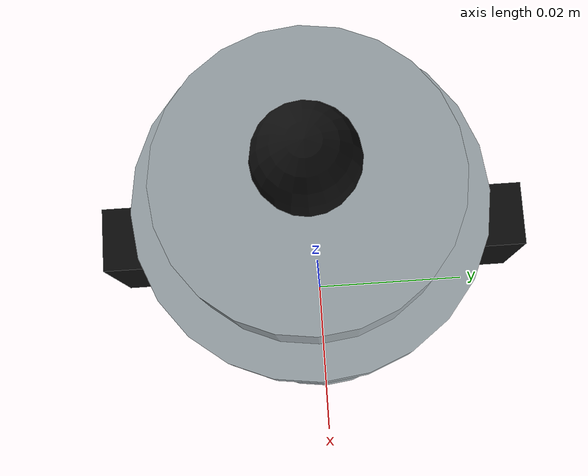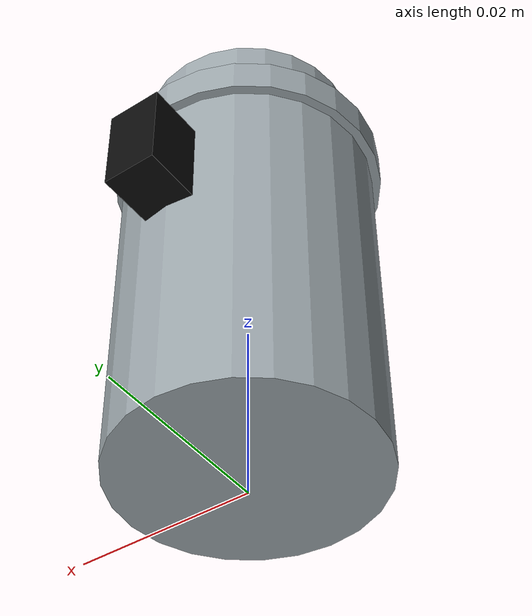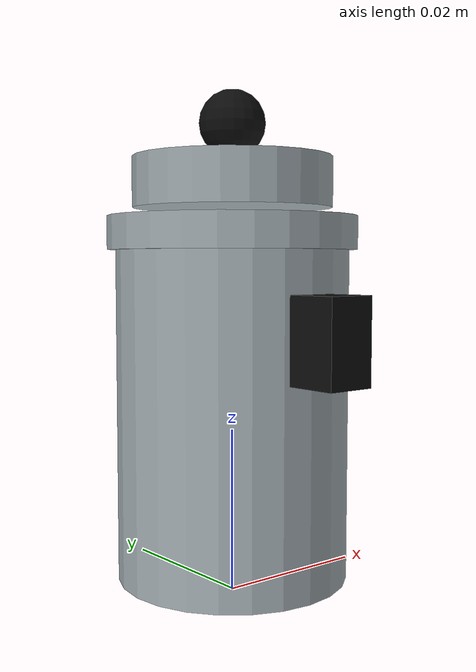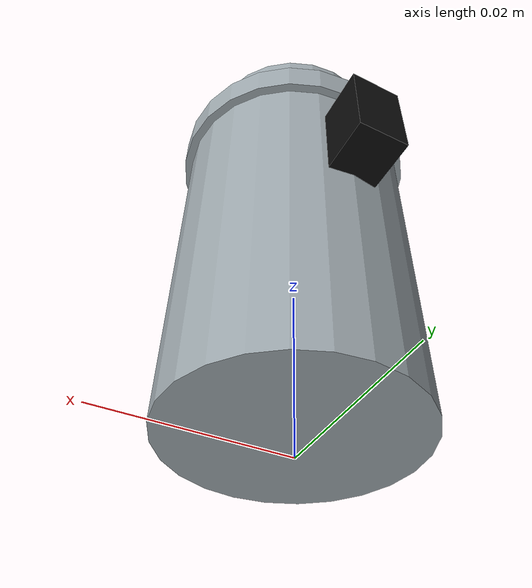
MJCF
<mujoco model="custom_stove_mini_metal_pot">
  <asset>
    <material name="brushed_metal" rgba="0.62 0.66 0.68 1"/>
    <material name="dark_handle" rgba="0.05 0.05 0.05 1"/>
  </asset>
  <worldbody>
    <body>
      <body name="object">
        <geom name="pot_col" type="cylinder" size="0.014 0.024" pos="0 0 0.024" rgba="0 0 0 0" density="350" group="0" contype="1" conaffinity="1"/>
        <geom name="pot_body" type="cylinder" size="0.014 0.020" pos="0 0 0.022" material="brushed_metal" group="1" contype="0" conaffinity="0"/>
        <geom name="pot_rim" type="cylinder" size="0.015 0.002" pos="0 0 0.044" material="brushed_metal" group="1" contype="0" conaffinity="0"/>
        <geom name="pot_lid" type="cylinder" size="0.012 0.003" pos="0 0 0.050" material="brushed_metal" group="1" contype="0" conaffinity="0"/>
        <geom name="pot_knob" type="sphere" size="0.004" pos="0 0 0.057" material="dark_handle" group="1" contype="0" conaffinity="0"/>
        <geom name="handle_left" type="box" size="0.003 0.004 0.005" pos="0 -0.016 0.032" material="dark_handle" group="1" contype="0" conaffinity="0"/>
        <geom name="handle_right" type="box" size="0.003 0.004 0.005" pos="0 0.016 0.032" material="dark_handle" group="1" contype="0" conaffinity="0"/>
        <geom name="reg_bbox" type="box" size="0.018 0.018 0.030" pos="0 0 0.030" rgba="0 0 0 0" group="3" contype="0" conaffinity="0"/>
      </body>
      <site name="bottom_site" pos="0 0 0" size="0.005" rgba="0 0 0 0"/>
      <site name="top_site" pos="0 0 0.060" size="0.005" rgba="0 0 0 0"/>
      <site name="horizontal_radius_site" pos="0.018 0 0.030" size="0.005" rgba="0 0 0 0"/>
    </body>
  </worldbody>
</mujoco>
